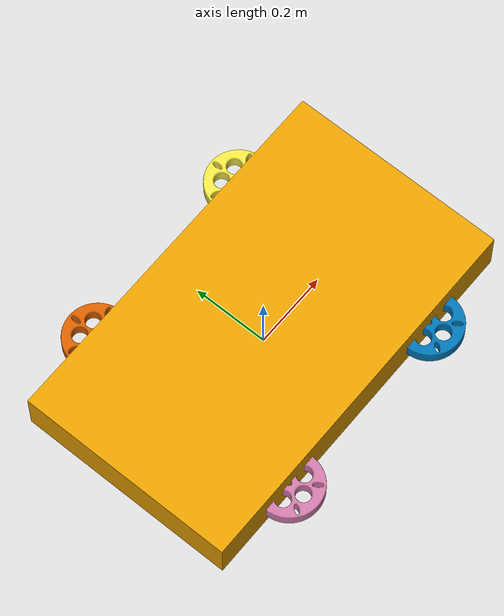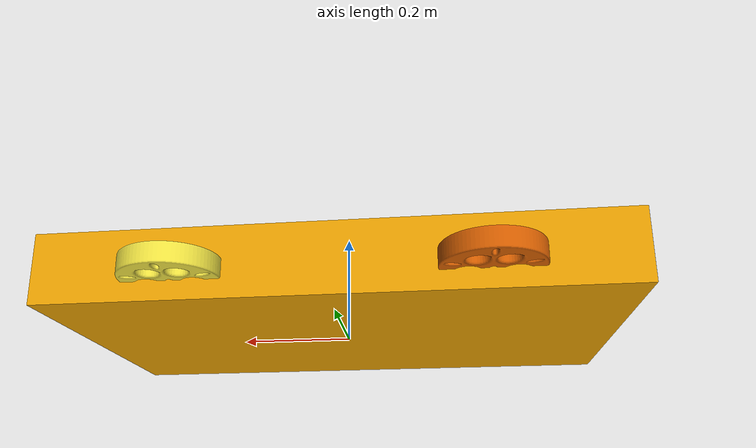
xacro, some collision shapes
<?xml version="1.0"?>
<robot xmlns:xacro="http://www.ros.org/wiki/xacro"  name="robot">
    <xacro:arg name="prefix" default="" />
    <xacro:arg name="use_ros2_control" default="true"/>
    <xacro:arg name="is_sim" default="true"/>
    <xacro:include filename="$(find dogtooth_description)/description/dogtooth_core.urdf.xacro"/>
    <xacro:dogbot prefix="$(arg prefix)" is_sim="$(arg is_sim)"/>
    <xacro:if value="$(arg use_ros2_control)">
        <xacro:include filename="$(find dogtooth_description)/description/ros2_control.xacro" />
    </xacro:if>
    <xacro:unless value="$(arg use_ros2_control)">
        <xacro:include filename="$(find dogtooth_description)/description/gazebo_control.xacro" />
    </xacro:unless>

</robot>

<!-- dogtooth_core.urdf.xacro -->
<robot xmlns:xacro="http://www.ros.org/wiki/xacro" >
<xacro:include filename="$(find dogtooth_description)/description/wheel.urdf.xacro"/>
<xacro:macro name="dogbot" params="prefix:='' is_sim:=true">
     <!-- Base Size -->
    <xacro:property name="base_x_size" value="0.98740000" />
    <xacro:property name="base_y_size" value="0.57090000" />
    <xacro:property name="base_z_size" value="0.24750000" />

    <!-- Wheel Mounting Positions -->
    <xacro:property name="wheelbase" value="0.5120" />
    <xacro:property name="track" value="0.5708" />
    <xacro:property name="wheel_vertical_offset" value="0.03282" />

    <!-- Wheel Properties -->
    <xacro:property name="wheel_length" value="0.1143" />
    <xacro:property name="wheel_radius" value="0.1651" />

    <xacro:property name="dogtooth_front_bumper_extend" value="0" />
    <xacro:property name="dogtooth_rear_bumper_extend" value="0" />

    <xacro:property name="M_PI" value="3.14159"/>

    <!-- Base link is the center of the robot's bottom plate -->

    <link name="${prefix}base_link">
      <visual>
        <origin xyz="0 0 0" rpy="0 0 0" />
        <geometry>
          <mesh filename="file://$(find dogtooth_description)/meshes/chassis.dae" />
        </geometry>
      </visual>
      <collision>
        <origin xyz="${( dogtooth_front_bumper_extend - dogtooth_rear_bumper_extend ) / 2.0} 0 ${base_z_size/4}" rpy="0 0 0" />
        <geometry>
          <box size="${ base_x_size + dogtooth_front_bumper_extend + dogtooth_rear_bumper_extend } ${base_y_size} ${base_z_size/2}"/>
        </geometry>
      </collision>
      <collision>
        <origin xyz="0 0 ${base_z_size*3/4-0.01}" rpy="0 0 0" />
        <geometry>
          <box size="${base_x_size*4/5} ${base_y_size} ${base_z_size/2-0.02}"/>
        </geometry>
      </collision>
    </link>

    <!-- Base footprint is on the ground under the robot -->
    <link name="${prefix}base_footprint"/>

    <joint name="${prefix}base_footprint_joint" type="fixed">
      <origin xyz="0 0 ${wheel_vertical_offset - wheel_radius}" rpy="0 0 0" />
      <parent link="${prefix}base_link" />
      <child link="${prefix}base_footprint" />
    </joint>

    <!-- Inertial link stores the robot's inertial information -->
    <link name="${prefix}inertial_link">
      <inertial>
        <mass value="46.034" />
        <origin xyz="-0.00065 -0.085 0.062" />
        <inertia ixx="0.6022" ixy="-0.02364" ixz="-0.1197" iyy="1.7386" iyz="-0.001544" izz="2.0296" />
      </inertial>
    </link>

    <joint name="${prefix}inertial_joint" type="fixed">
      <origin xyz="0 0 0" rpy="0 0 0" />
      <parent link="${prefix}base_link" />
      <child link="${prefix}inertial_link" />
    </joint>

    <xacro:dogtooth_wheel wheel_prefix="${prefix}front_left" x="${wheelbase/2}" y="${track/2}" z="${wheel_vertical_offset}" is_sim="${is_sim}"/>
    <xacro:dogtooth_wheel wheel_prefix="${prefix}front_right" x="${wheelbase/2}" y="${-track/2}" z="${wheel_vertical_offset}" is_sim="${is_sim}"/>
    <xacro:dogtooth_wheel wheel_prefix="${prefix}back_left" x="${-wheelbase/2}" y="${track/2}" z="${wheel_vertical_offset}" is_sim="${is_sim}"/>
    <xacro:dogtooth_wheel wheel_prefix="${prefix}back_right" x="${-wheelbase/2}" y="${-track/2}" z="${wheel_vertical_offset}" is_sim="${is_sim}"/>
</xacro:macro>
</robot>

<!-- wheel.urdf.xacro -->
<robot xmlns:xacro="http://ros.org/wiki/xacro" name="dogtooth_wheel">

  <xacro:macro name="dogtooth_wheel" params="wheel_prefix x y z roll:=0.0 pitch:=0.0 yaw:=0.0 is_sim:=true">
    <link name="${wheel_prefix}_wheel">
      <inertial>
        <mass value="2.637" />
        <origin xyz="0 0 0" />
        <inertia  ixx="0.02467" ixy="0" ixz="0" iyy="0.04411" iyz="0" izz="0.02467" />
      </inertial>
      <visual>
        <origin xyz="0 0 0" rpy="0 0 0" />
        <geometry>
          <mesh filename="file://$(find dogtooth_description)/meshes/wheel.dae" scale="0.6 0.6 0.6"/>
        </geometry>
      </visual>
      <collision>
        <origin xyz="0 0 0" rpy="${M_PI/2} 0 0" />
        <geometry>
          <cylinder length="${wheel_length}" radius="${wheel_radius}" />
        </geometry>
      </collision>
    </link>

  <xacro:if value="${is_sim}">
      <joint name="${wheel_prefix}_wheel_joint" type="continuous">
      <parent link="base_link"/>
      <child link="${wheel_prefix}_wheel"/>
      <origin xyz="${x} ${y} ${z}" rpy="${roll} ${pitch} ${yaw}"/>
      <axis xyz="0 1 0" rpy="0 0 0" />
    </joint>
    <gazebo reference="${wheel_prefix}_wheel">
      <mu1 value="1.0"/>
      <mu2 value="0.5"/>
      <kp value="10000000.0" />
      <kd value="1.0" />
      <fdir1 value="1 0 0"/>
    </gazebo>
  </xacro:if>

  <xacro:unless value="${is_sim}">
    <joint name="${wheel_prefix}_wheel_joint" type="fixed">
      <parent link="base_link"/>
      <child link="${wheel_prefix}_wheel"/>
      <origin xyz="${x} ${y} ${z}" rpy="${roll} ${pitch} ${yaw}"/>
      <axis xyz="0 1 0" rpy="0 0 0" />
    </joint>
  </xacro:unless>

  </xacro:macro>
</robot>
